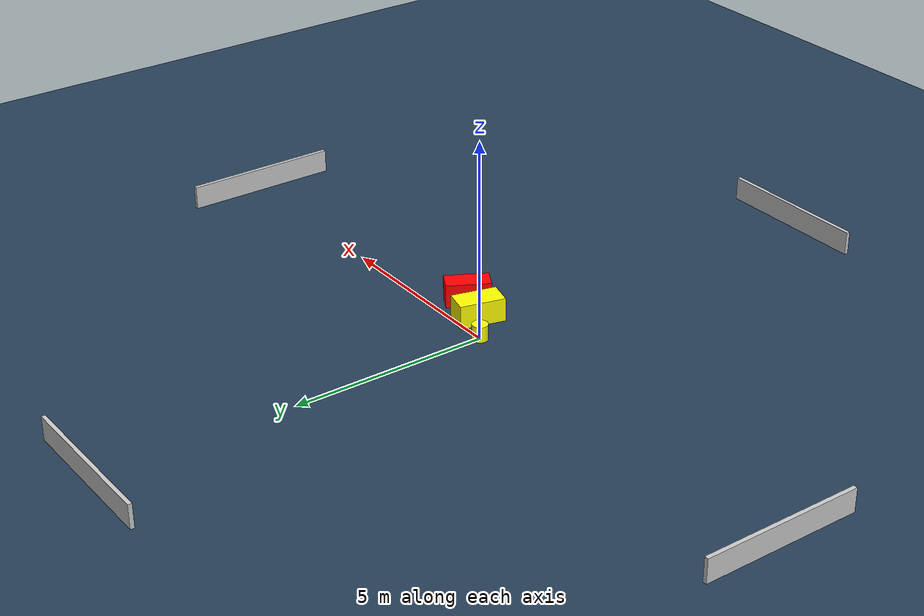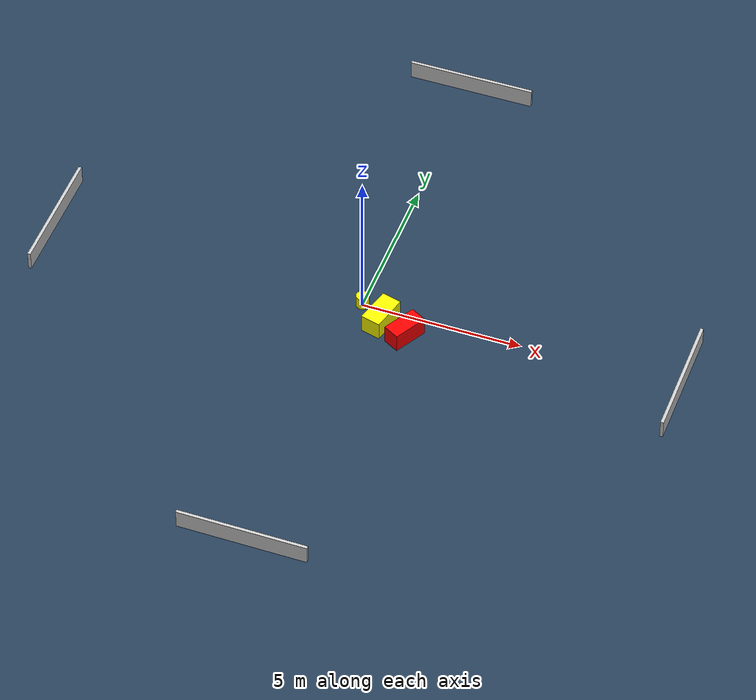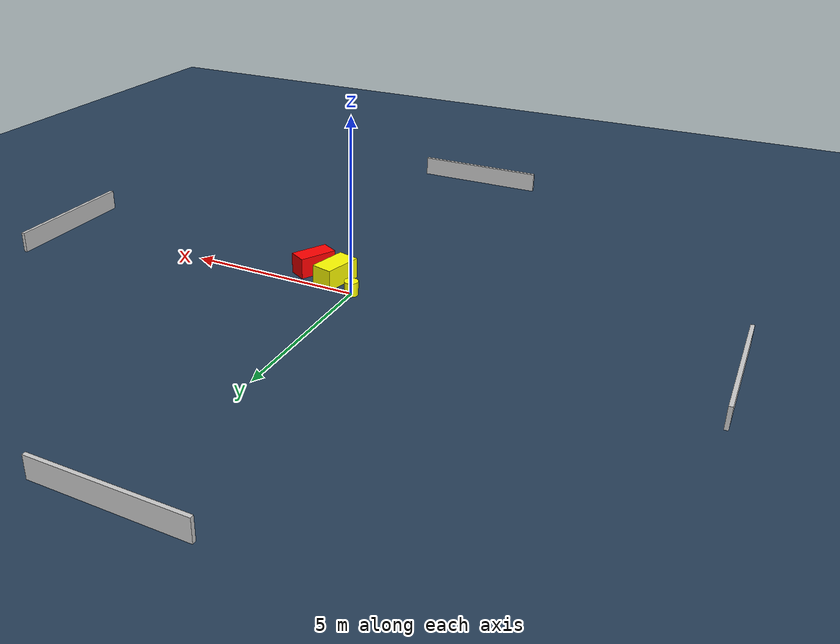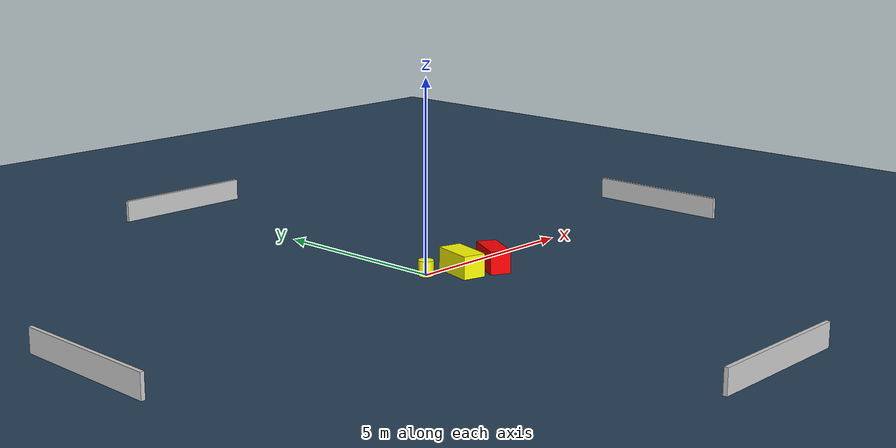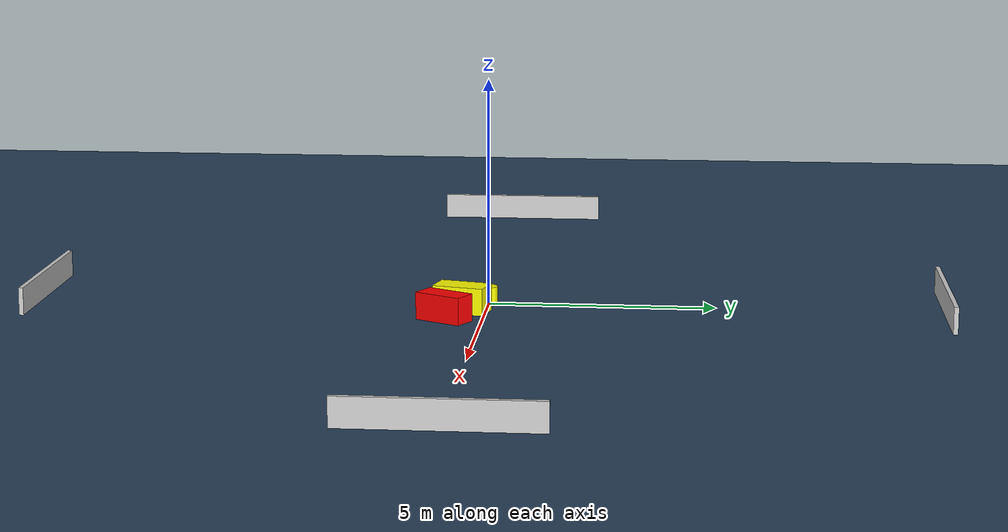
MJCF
<?xml version="1.0" ?>
<mujoco model="generated_environment">
  <option timestep="0.01" integrator="RK4" cone="elliptic"/>
  <default>
    <geom density="1"/>
  </default>
  <asset>
    <texture builtin="gradient" height="3072" name="skybox" rgb1="0.3 0.5 0.7" rgb2="0 0 0" type="skybox" width="512"/>
    <texture builtin="checker" height="300" name="groundplane" rgb1="0.2 0.3 0.4" rgb2="0.1 0.2 0.3" type="2d" width="300"/>
    <material name="groundplane" reflectance="0.2" texrepeat="5 5" texture="groundplane"/>
  </asset>
  <worldbody>
    <light dir="0 0 -1" directional="true" pos="0 0 1.5"/>
    <geom condim="3" friction="0.5 0.005 0.001" material="groundplane" name="floor" pos="0 0 0" size="0 0 0.05" type="plane"/>
    <body name="walls">
      <geom name="wall_1" condim="4" pos="-10.0 0.0 0.3" rgba="0.800000011920929 0.800000011920929 0.800000011920929 1.0" size="0.05 2.0 0.3" type="box"/>
      <geom name="wall_2" condim="4" pos="10.0 0.0 0.3" rgba="0.800000011920929 0.800000011920929 0.800000011920929 1.0" size="0.05 2.0 0.3" type="box"/>
      <geom name="wall_3" condim="4" pos="0.0 -10.0 0.3" rgba="0.800000011920929 0.800000011920929 0.800000011920929 1.0" size="2.0 0.05 0.3" type="box"/>
      <geom name="wall_4" condim="4" pos="0.0 10.0 0.3" rgba="0.800000011920929 0.800000011920929 0.800000011920929 1.0" size="2.0 0.05 0.3" type="box"/>
    </body>
    <body name="robot">
      <joint name="joint_x" type="slide" pos="0 0 0" axis="1 0 0"/>
      <joint name="joint_y" type="slide" pos="0 0 0" axis="0 1 0"/>
      <geom name="robot" type="cylinder" pos="0.0 0.0 0.2" size="0.2 0.2 0.0" mass="5.0" friction="1.0 0.005 0.0001" condim="4" rgba="1.0 1.0 0.0 1.0"/>
    </body>
    <body name="obstacle_1_movable">
      <geom name="obstacle_1_movable" condim="4" pos="0.7744512453695226 -0.5126764108200569 0.3" euler="0 0 165.7663959378284" friction="0.0 0.005 0.001" rgba="1.0 1.0 0.0 1.0" size="0.31292893161906443 0.5756872418357752 0.3" type="box" mass="0.1"/>
      <joint type="free"/>
    </body>
    <body name="obstacle_2_static">
      <geom name="obstacle_2_static" condim="4" pos="1.6320555094012246 -0.8154859542531396 0.3" euler="0 0 241.05059902937128" friction="0.0 0.005 0.001" rgba="1.0 0.0 0.0 1.0" size="0.5551358025340376 0.27023533972441643 0.3" type="box"/>
    </body>
  </worldbody>
  <actuator>
    <motor name="actuator_x" joint="joint_x" gear="1" ctrlrange="-1 1"/>
    <motor name="actuator_y" joint="joint_y" gear="1" ctrlrange="-1 1"/>
  </actuator>
</mujoco>
